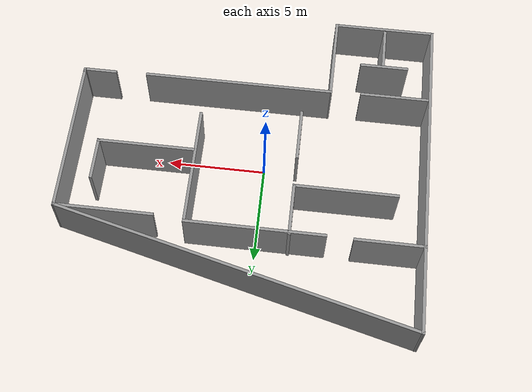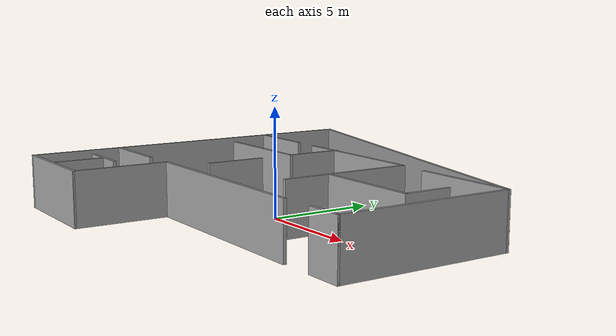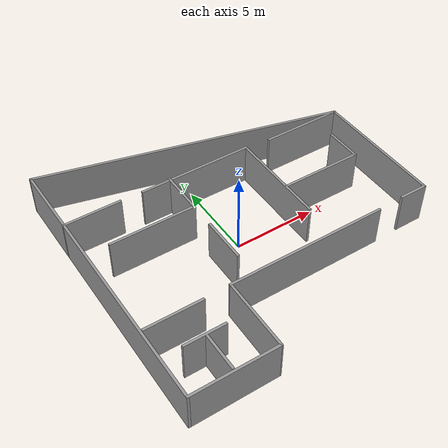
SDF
<?xml version='1.0'?>
<sdf version='1.6'>
  <model name='factory_v2'>
    <pose frame=''>0.869489 0.315794 0 0 -0 0</pose>
    <link name='Wall_11'>
      <collision name='Wall_11_Collision'>
        <geometry>
          <box>
            <size>2.25 0.15 2.5</size>
          </box>
        </geometry>
        <pose frame=''>0 0 1.25 0 -0 0</pose>
      </collision>
      <visual name='Wall_11_Visual'>
        <pose frame=''>0 0 1.25 0 -0 0</pose>
        <geometry>
          <box>
            <size>2.25 0.15 2.5</size>
          </box>
        </geometry>
        <material>
          <script>
            <uri>file://media/materials/scripts/gazebo.material</uri>
            <name>Gazebo/Grey</name>
          </script>
          <ambient>1 1 1 1</ambient>
        </material>
        <meta>
          <layer>0</layer>
        </meta>
      </visual>
      <pose frame=''>-6.5182 -7.19761 0 0 -0 -1.5708</pose>
    </link>
    <link name='Wall_13'>
      <collision name='Wall_13_Collision'>
        <geometry>
          <box>
            <size>5 0.15 2.5</size>
          </box>
        </geometry>
        <pose frame=''>0 0 1.25 0 -0 0</pose>
      </collision>
      <visual name='Wall_13_Visual'>
        <pose frame=''>0 0 1.25 0 -0 0</pose>
        <geometry>
          <box>
            <size>5 0.15 2.5</size>
          </box>
        </geometry>
        <material>
          <script>
            <uri>file://media/materials/scripts/gazebo.material</uri>
            <name>Gazebo/Grey</name>
          </script>
          <ambient>1 1 1 1</ambient>
        </material>
        <meta>
          <layer>0</layer>
        </meta>
      </visual>
      <pose frame=''>6.60114 3.92684 0 0 -0 3.14159</pose>
    </link>
    <link name='Wall_15'>
      <collision name='Wall_15_Collision'>
        <geometry>
          <box>
            <size>3.5 0.15 2.5</size>
          </box>
        </geometry>
        <pose frame=''>0 0 1.25 0 -0 0</pose>
      </collision>
      <visual name='Wall_15_Visual'>
        <pose frame=''>0 0 1.25 0 -0 0</pose>
        <geometry>
          <box>
            <size>3.5 0.15 2.5</size>
          </box>
        </geometry>
        <material>
          <script>
            <uri>file://media/materials/scripts/gazebo.material</uri>
            <name>Gazebo/Grey</name>
          </script>
          <ambient>1 1 1 1</ambient>
        </material>
        <meta>
          <layer>0</layer>
        </meta>
      </visual>
      <pose frame=''>-7.35145 4.12811 0 0 -0 0</pose>
    </link>
    <link name='Wall_17'>
      <collision name='Wall_17_Collision'>
        <geometry>
          <box>
            <size>7 0.15 2.5</size>
          </box>
        </geometry>
        <pose frame=''>0 0 1.25 0 -0 0</pose>
      </collision>
      <visual name='Wall_17_Visual'>
        <pose frame=''>0 0 1.25 0 -0 0</pose>
        <geometry>
          <box>
            <size>7 0.15 2.5</size>
          </box>
        </geometry>
        <material>
          <script>
            <uri>file://media/materials/scripts/gazebo.material</uri>
            <name>Gazebo/Grey</name>
          </script>
          <ambient>1 1 1 1</ambient>
        </material>
        <meta>
          <layer>0</layer>
        </meta>
      </visual>
      <pose frame=''>-0.827689 4.08766 0 0 -0 0</pose>
    </link>
    <link name='Wall_18'>
      <collision name='Wall_18_Collision'>
        <geometry>
          <box>
            <size>6.25 0.15 2.5</size>
          </box>
        </geometry>
        <pose frame=''>0 0 1.25 0 -0 0</pose>
      </collision>
      <visual name='Wall_18_Visual'>
        <pose frame=''>0 0 1.25 0 -0 0</pose>
        <geometry>
          <box>
            <size>6.25 0.15 2.5</size>
          </box>
        </geometry>
        <material>
          <script>
            <uri>file://media/materials/scripts/gazebo.material</uri>
            <name>Gazebo/Grey</name>
          </script>
          <ambient>1 1 1 1</ambient>
        </material>
        <meta>
          <layer>0</layer>
        </meta>
      </visual>
      <pose frame=''>2.59731 1.03765 0 0 -0 -1.5708</pose>
    </link>
    <link name='Wall_2'>
      <collision name='Wall_2_Collision'>
        <geometry>
          <box>
            <size>8 0.15 2.5</size>
          </box>
        </geometry>
        <pose frame=''>0 0 1.25 0 -0 0</pose>
      </collision>
      <visual name='Wall_2_Visual'>
        <pose frame=''>0 0 1.25 0 -0 0</pose>
        <geometry>
          <box>
            <size>8 0.15 2.5</size>
          </box>
        </geometry>
        <material>
          <script>
            <uri>file://media/materials/scripts/gazebo.material</uri>
            <name>Gazebo/Grey</name>
          </script>
          <ambient>1 1 1 1</ambient>
        </material>
        <meta>
          <layer>0</layer>
        </meta>
      </visual>
      <pose frame=''>9.02614 -0.038619 0 0 -0 1.5708</pose>
    </link>
    <link name='Wall_20'>
      <collision name='Wall_20_Collision'>
        <geometry>
          <box>
            <size>5 0.15 2.5</size>
          </box>
        </geometry>
        <pose frame=''>0 0 1.25 0 -0 0</pose>
      </collision>
      <visual name='Wall_20_Visual'>
        <pose frame=''>0 0 1.25 0 -0 0</pose>
        <geometry>
          <box>
            <size>5 0.15 2.5</size>
          </box>
        </geometry>
        <material>
          <script>
            <uri>file://media/materials/scripts/gazebo.material</uri>
            <name>Gazebo/Grey</name>
          </script>
          <ambient>1 1 1 1</ambient>
        </material>
        <meta>
          <layer>0</layer>
        </meta>
      </visual>
      <pose frame=''>5.09021 0.123009 0 0 -0 0</pose>
    </link>
    <link name='Wall_21'>
      <collision name='Wall_21_Collision'>
        <geometry>
          <box>
            <size>2.25 0.15 2.5</size>
          </box>
        </geometry>
        <pose frame=''>0 0 1.25 0 -0 0</pose>
      </collision>
      <visual name='Wall_21_Visual'>
        <pose frame=''>0 0 1.25 0 -0 0</pose>
        <geometry>
          <box>
            <size>2.25 0.15 2.5</size>
          </box>
        </geometry>
        <material>
          <script>
            <uri>file://media/materials/scripts/gazebo.material</uri>
            <name>Gazebo/Grey</name>
          </script>
          <ambient>1 1 1 1</ambient>
        </material>
        <meta>
          <layer>0</layer>
        </meta>
      </visual>
      <pose frame=''>7.51522 1.17301 0 0 -0 1.5708</pose>
    </link>
    <link name='Wall_27'>
      <collision name='Wall_27_Collision'>
        <geometry>
          <box>
            <size>2.75 0.15 2.5</size>
          </box>
        </geometry>
        <pose frame=''>0 0 1.25 0 -0 0</pose>
      </collision>
      <visual name='Wall_27_Visual'>
        <pose frame=''>0 0 1.25 0 -0 0</pose>
        <geometry>
          <box>
            <size>2.75 0.15 2.5</size>
          </box>
        </geometry>
        <material>
          <script>
            <uri>file://media/materials/scripts/gazebo.material</uri>
            <name>Gazebo/Grey</name>
          </script>
          <ambient>1 1 1 1</ambient>
        </material>
        <meta>
          <layer>0</layer>
        </meta>
      </visual>
      <pose frame=''>-2.5131 2.86857 0 0 -0 -1.5708</pose>
    </link>
    <link name='Wall_29'>
      <collision name='Wall_29_Collision'>
        <geometry>
          <box>
            <size>2.75 0.15 2.5</size>
          </box>
        </geometry>
        <pose frame=''>0 0 1.25 0 -0 0</pose>
      </collision>
      <visual name='Wall_29_Visual'>
        <pose frame=''>0 0 1.25 0 -0 0</pose>
        <geometry>
          <box>
            <size>2.75 0.15 2.5</size>
          </box>
        </geometry>
        <material>
          <script>
            <uri>file://media/materials/scripts/gazebo.material</uri>
            <name>Gazebo/Grey</name>
          </script>
          <ambient>1 1 1 1</ambient>
        </material>
        <meta>
          <layer>0</layer>
        </meta>
      </visual>
      <pose frame=''>-2.51211 -1.3694 0 0 -0 -1.5708</pose>
    </link>
    <link name='Wall_3'>
      <collision name='Wall_3_Collision'>
        <geometry>
          <box>
            <size>18.7524 0.15 2.5</size>
          </box>
        </geometry>
        <pose frame=''>0 0 1.25 0 -0 0</pose>
      </collision>
      <visual name='Wall_3_Visual'>
        <pose frame=''>0 0 1.25 0 -0 0</pose>
        <geometry>
          <box>
            <size>18.7524 0.15 2.5</size>
          </box>
        </geometry>
        <material>
          <script>
            <uri>file://media/materials/scripts/gazebo.material</uri>
            <name>Gazebo/Grey</name>
          </script>
          <ambient>1 1 1 1</ambient>
        </material>
        <meta>
          <layer>0</layer>
        </meta>
      </visual>
      <pose frame=''>0 6.17212 0 0 -0 2.89779</pose>
    </link>
    <link name='Wall_32'>
      <collision name='Wall_32_Collision'>
        <geometry>
          <box>
            <size>9.75 0.15 2.5</size>
          </box>
        </geometry>
        <pose frame=''>0 0 1.25 0 -0 0</pose>
      </collision>
      <visual name='Wall_32_Visual'>
        <pose frame=''>0 0 1.25 0 -0 0</pose>
        <geometry>
          <box>
            <size>9.75 0.15 2.5</size>
          </box>
        </geometry>
        <material>
          <script>
            <uri>file://media/materials/scripts/gazebo.material</uri>
            <name>Gazebo/Grey</name>
          </script>
          <ambient>1 1 1 1</ambient>
        </material>
        <meta>
          <layer>0</layer>
        </meta>
      </visual>
      <pose frame=''>0.914317 -4.11362 0 0 -0 0</pose>
    </link>
    <link name='Wall_34'>
      <collision name='Wall_34_Collision'>
        <geometry>
          <box>
            <size>0.25 0.15 2.5</size>
          </box>
        </geometry>
        <pose frame=''>0 0 1.25 0 -0 0</pose>
      </collision>
      <visual name='Wall_34_Visual'>
        <pose frame=''>0 0 1.25 0 -0 0</pose>
        <geometry>
          <box>
            <size>0.25 0.15 2.5</size>
          </box>
        </geometry>
        <material>
          <script>
            <uri>file://media/materials/scripts/gazebo.material</uri>
            <name>Gazebo/Grey</name>
          </script>
          <ambient>1 1 1 1</ambient>
        </material>
        <meta>
          <layer>0</layer>
        </meta>
      </visual>
      <pose frame=''>9.02614 -4.01362 0 0 -0 -1.5708</pose>
    </link>
    <link name='Wall_35'>
      <collision name='Wall_35_Collision'>
        <geometry>
          <box>
            <size>1.75 0.15 2.5</size>
          </box>
        </geometry>
        <pose frame=''>0 0 1.25 0 -0 0</pose>
      </collision>
      <visual name='Wall_35_Visual'>
        <pose frame=''>0 0 1.25 0 -0 0</pose>
        <geometry>
          <box>
            <size>1.75 0.15 2.5</size>
          </box>
        </geometry>
        <material>
          <script>
            <uri>file://media/materials/scripts/gazebo.material</uri>
            <name>Gazebo/Grey</name>
          </script>
          <ambient>1 1 1 1</ambient>
        </material>
        <meta>
          <layer>0</layer>
        </meta>
      </visual>
      <pose frame=''>8.22614 -4.06362 0 0 -0 3.14159</pose>
    </link>
    <link name='Wall_38'>
      <collision name='Wall_38_Collision'>
        <geometry>
          <box>
            <size>5.25 0.15 2.5</size>
          </box>
        </geometry>
        <pose frame=''>0 0 1.25 0 -0 0</pose>
      </collision>
      <visual name='Wall_38_Visual'>
        <pose frame=''>0 0 1.25 0 -0 0</pose>
        <geometry>
          <box>
            <size>5.25 0.15 2.5</size>
          </box>
        </geometry>
        <material>
          <script>
            <uri>file://media/materials/scripts/gazebo.material</uri>
            <name>Gazebo/Grey</name>
          </script>
          <ambient>1 1 1 1</ambient>
        </material>
        <meta>
          <layer>0</layer>
        </meta>
      </visual>
      <pose frame=''>-5.0631 1.56857 0 0 -0 3.14159</pose>
    </link>
    <link name='Wall_4'>
      <collision name='Wall_4_Collision'>
        <geometry>
          <box>
            <size>17 0.15 2.5</size>
          </box>
        </geometry>
        <pose frame=''>0 0 1.25 0 -0 0</pose>
      </collision>
      <visual name='Wall_4_Visual'>
        <pose frame=''>0 0 1.25 0 -0 0</pose>
        <geometry>
          <box>
            <size>17 0.15 2.5</size>
          </box>
        </geometry>
        <material>
          <script>
            <uri>file://media/materials/scripts/gazebo.material</uri>
            <name>Gazebo/Grey</name>
          </script>
          <ambient>1 1 1 1</ambient>
        </material>
        <meta>
          <layer>0</layer>
        </meta>
      </visual>
      <pose frame=''>-9.02614 -0.007594 0 0 -0 -1.5708</pose>
    </link>
    <link name='Wall_40'>
      <collision name='Wall_40_Collision'>
        <geometry>
          <box>
            <size>2.5 0.15 2.5</size>
          </box>
        </geometry>
        <pose frame=''>0 0 1.25 0 -0 0</pose>
      </collision>
      <visual name='Wall_40_Visual'>
        <pose frame=''>0 0 1.25 0 -0 0</pose>
        <geometry>
          <box>
            <size>2.5 0.15 2.5</size>
          </box>
        </geometry>
        <material>
          <script>
            <uri>file://media/materials/scripts/gazebo.material</uri>
            <name>Gazebo/Grey</name>
          </script>
          <ambient>1 1 1 1</ambient>
        </material>
        <meta>
          <layer>0</layer>
        </meta>
      </visual>
      <pose frame=''>-6.5768 -5.99577 0 0 -0 0</pose>
    </link>
    <link name='Wall_5'>
      <collision name='Wall_5_Collision'>
        <geometry>
          <box>
            <size>5.25 0.15 2.5</size>
          </box>
        </geometry>
        <pose frame=''>0 0 1.25 0 -0 0</pose>
      </collision>
      <visual name='Wall_5_Visual'>
        <pose frame=''>0 0 1.25 0 -0 0</pose>
        <geometry>
          <box>
            <size>5.25 0.15 2.5</size>
          </box>
        </geometry>
        <material>
          <script>
            <uri>file://media/materials/scripts/gazebo.material</uri>
            <name>Gazebo/Grey</name>
          </script>
          <ambient>1 1 1 1</ambient>
        </material>
        <meta>
          <layer>0</layer>
        </meta>
      </visual>
      <pose frame=''>-6.47614 -8.43259 0 0 -0 0</pose>
    </link>
    <link name='Wall_6'>
      <collision name='Wall_6_Collision'>
        <geometry>
          <box>
            <size>4.46917 0.15 2.5</size>
          </box>
        </geometry>
        <pose frame=''>0 0 1.25 0 -0 0</pose>
      </collision>
      <visual name='Wall_6_Visual'>
        <pose frame=''>0 0 1.25 0 -0 0</pose>
        <geometry>
          <box>
            <size>4.46917 0.15 2.5</size>
          </box>
        </geometry>
        <material>
          <script>
            <uri>file://media/materials/scripts/gazebo.material</uri>
            <name>Gazebo/Grey</name>
          </script>
          <ambient>1 1 1 1</ambient>
        </material>
        <meta>
          <layer>0</layer>
        </meta>
      </visual>
      <pose frame=''>-3.90591 -6.27311 0 0 -0 1.56143</pose>
    </link>
    <link name='Wall_9'>
      <collision name='Wall_9_Collision'>
        <geometry>
          <box>
            <size>3.5 0.15 2.5</size>
          </box>
        </geometry>
        <pose frame=''>0 0 1.25 0 -0 0</pose>
      </collision>
      <visual name='Wall_9_Visual'>
        <pose frame=''>0 0 1.25 0 -0 0</pose>
        <geometry>
          <box>
            <size>3.5 0.15 2.5</size>
          </box>
        </geometry>
        <material>
          <script>
            <uri>file://media/materials/scripts/gazebo.material</uri>
            <name>Gazebo/Grey</name>
          </script>
          <ambient>1 1 1 1</ambient>
        </material>
        <meta>
          <layer>0</layer>
        </meta>
      </visual>
      <pose frame=''>-7.18963 -4.16528 0 0 -0 0</pose>
    </link>
    <static>1</static>
  </model>
</sdf>
